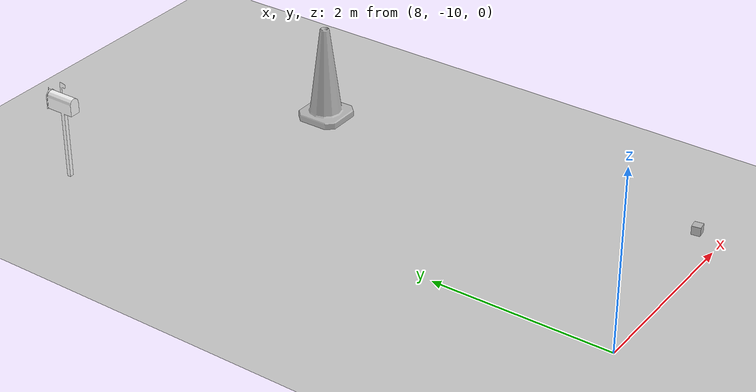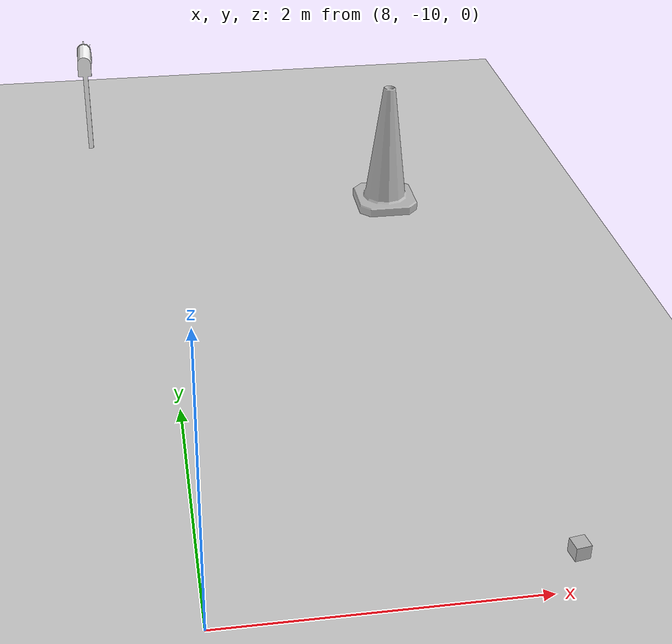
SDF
<sdf version="1.7">
 <world name="default">
  <light name="sun" type="directional">
   <pose>0 0 10 0 -0 0</pose>
   <diffuse>0.8 0.8 0.8 1</diffuse>
   <specular>0.2 0.2 0.2 1</specular>
   <attenuation>
    <range>1000</range>
    <constant>0.9</constant>
    <linear>0.01</linear>
    <quadratic>0.001</quadratic>
   </attenuation>
   <direction>-0.5 0.1 -0.9</direction>
   <spot><inner_angle>0</inner_angle><outer_angle>0</outer_angle><falloff>0</falloff></spot>
  </light>
  <model name="ground_plane">
   <static>1</static>
   <link name="link">
    <collision name="collision">
     <geometry><plane><normal>0 0 1</normal><size>100 100</size></plane></geometry>
     <surface>
      <contact><collide_bitmask>65535</collide_bitmask></contact>
      <friction><ode><mu>100</mu><mu2>50</mu2></ode></friction>
     </surface>
    </collision>
    <visual name="visual">
     <cast_shadows>0</cast_shadows>
     <geometry><plane><normal>0 0 1</normal><size>100 100</size></plane></geometry>
     <material>
      <script><uri>file://media/materials/scripts/gazebo.material</uri><name>Gazebo/Grey</name></script>
     </material>
    </visual>
   </link>
  </model>
  <gravity>0 0 -9.8</gravity>
  <magnetic_field>6e-06 2.3e-05 -4.2e-05</magnetic_field>
  <atmosphere type="adiabatic"/>
  <physics type="ode">
   <max_step_size>0.001</max_step_size>
   <real_time_factor>1</real_time_factor>
   <real_time_update_rate>1000</real_time_update_rate>
  </physics>
  <scene><ambient>0.4 0.4 0.4 1</ambient><background>0.7 0.7 0.7 1</background><shadows>1</shadows></scene>
  <spherical_coordinates>
   <surface_model>EARTH_WGS84</surface_model>
   <latitude_deg>0</latitude_deg>
   <longitude_deg>0</longitude_deg>
   <elevation>0</elevation>
   <heading_deg>0</heading_deg>
  </spherical_coordinates>
  <model name="camera">
   <pose>10.2321 -9.71131 0.05 0 -0 1.7239</pose>
   <link name="link">
    <inertial>
     <mass>0.1</mass>
     <inertia>
      <ixx>0.000166667</ixx>
      <iyy>0.000166667</iyy>
      <izz>0.000166667</izz>
      <ixy>0</ixy>
      <ixz>0</ixz>
      <iyz>0</iyz>
     </inertia>
    </inertial>
    <collision name="collision"><geometry><box><size>0.1 0.1 0.1</size></box></geometry></collision>
    <visual name="visual"><geometry><box><size>0.1 0.1 0.1</size></box></geometry></visual>
    <sensor name="camera" type="camera">
     <camera>
      <horizontal_fov>1.047</horizontal_fov>
      <image><width>320</width><height>240</height></image>
      <clip><near>0.1</near><far>100</far></clip>
     </camera>
     <always_on>1</always_on>
     <update_rate>30</update_rate>
     <visualize>1</visualize>
    </sensor>
   </link>
   <sensor name="camera" type="camera">
    <always_on>1</always_on>
    <update_rate>30</update_rate>
    <camera>
     <horizontal_fov>1.047</horizontal_fov>
     <image><width>320</width><height>240</height><format>R8G8B8</format></image>
     <clip><near>0.1</near><far>100</far></clip>
    </camera>
    <plugin name="camera_controller" filename="libgazebo_ros_camera.so">
     <alwaysOn>true</alwaysOn>
     <updateRate>0.0</updateRate>
     <cameraName>camera</cameraName>
     <imageTopicName>/camera/color/image_raw</imageTopicName>
     <cameraInfoTopicName>/camera/color/camera_info</cameraInfoTopicName>
     <frameName>camera_link</frameName>
     <hackBaseline>0.07</hackBaseline>
     <distortionK1>0.0</distortionK1>
     <distortionK2>0.0</distortionK2>
     <distortionK3>0.0</distortionK3>
     <distortionT1>0.0</distortionT1>
     <distortionT2>0.0</distortionT2>
    </plugin>
   </sensor>
  </model>
  <model name="Mailbox">
   <link name="link">
    <collision name="collision">
     <geometry><mesh><uri>model://mailbox/meshes/mailbox.dae</uri></mesh></geometry>
    </collision>
    <visual name="visual">
     <geometry><mesh><uri>model://mailbox/meshes/mailbox.dae</uri></mesh></geometry>
     <material>
      <script>
       <uri>model://mailbox/materials/scripts</uri>
       <uri>model://mailbox/materials/textures</uri>
       <name>Mailbox/Diffuse</name>
      </script>
     </material>
    </visual>
    <inertial>
     <inertia><ixx>1</ixx><ixy>0</ixy><ixz>0</ixz><iyy>1</iyy><iyz>0</iyz><izz>1</izz></inertia>
     <mass>1</mass>
    </inertial>
   </link>
   <pose>7.43074 -3.79289 -9e-06 6e-06 -8e-06 -0</pose>
  </model>
  <model name="Construction Cone">
   <link name="link">
    <collision name="collision">
     <geometry>
      <mesh><scale>10 10 10</scale><uri>model://construction_cone/meshes/construction_cone.dae</uri></mesh>
     </geometry>
    </collision>
    <visual name="visual">
     <geometry>
      <mesh><scale>10 10 10</scale><uri>model://construction_cone/meshes/construction_cone.dae</uri></mesh>
     </geometry>
    </visual>
    <inertial>
     <inertia><ixx>1</ixx><ixy>0</ixy><ixz>0</ixz><iyy>1</iyy><iyz>0</iyz><izz>1</izz></inertia>
     <mass>1</mass>
    </inertial>
   </link>
   <pose>9.98078 -5.26045 -0 0 -1e-06 0</pose>
  </model>
 </world>
</sdf>
